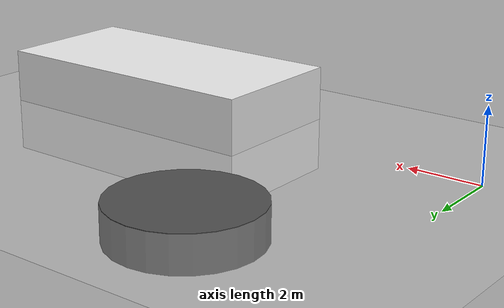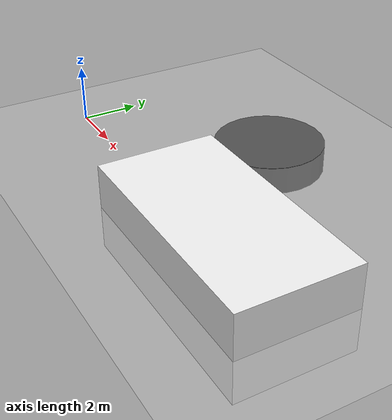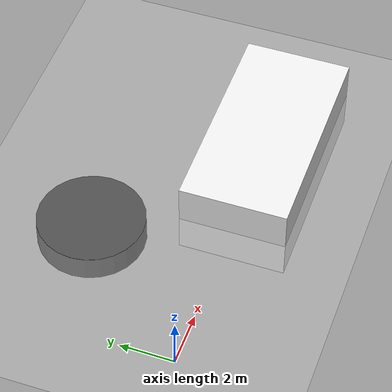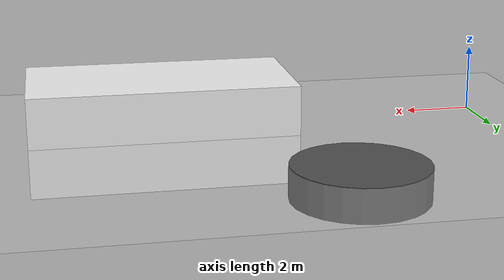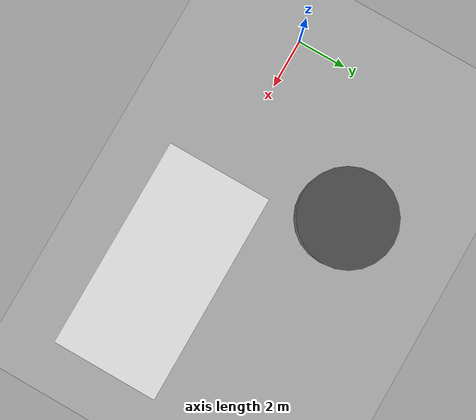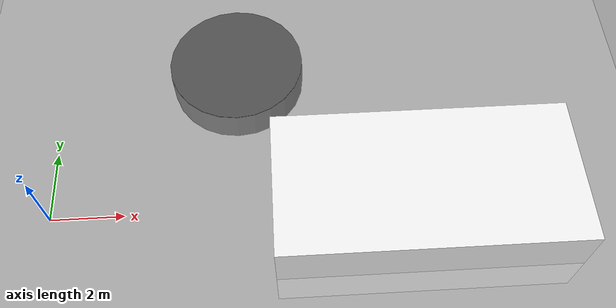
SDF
<?xml version="1.0" ?>
<sdf version="1.6">
  <world name="lunar_habitat">
 <plugin name="gazebo_ros_state" filename="libgazebo_ros_state.so">
  <ros>
    <namespace>/gazebo</namespace>
  </ros>
  <update_rate>1.0</update_rate>
</plugin>

<plugin name="gazebo_ros_factory" filename="libgazebo_ros_factory.so" />

    <!-- Lunar Physics -->
    <physics name="default_physics" default="0" type="ode">
      <gravity>0 0 -1.62</gravity> <!-- Lunar gravity -->
      <ode>
        <solver>
          <type>quick</type>
          <iters>10</iters>
          <sor>1.3</sor>
        </solver>
        <constraints>
          <cfm>0</cfm>
          <erp>0.2</erp>
          <contact_max_correcting_vel>100</contact_max_correcting_vel>
          <contact_surface_layer>0.001</contact_surface_layer>
        </constraints>
      </ode>
      <real_time_update_rate>1000</real_time_update_rate>
      <max_step_size>0.001</max_step_size>
    </physics>

    <!-- Sun lighting -->
    <light name="sun" type="directional">
      <cast_shadows>1</cast_shadows>
      <pose>0 0 10 0 0 0</pose>
      <diffuse>0.8 0.8 0.8 1</diffuse>
      <specular>0.8 0.8 0.8 1</specular>
      <attenuation>
        <range>1000</range>
        <constant>0.9</constant>
        <linear>0.01</linear>
        <quadratic>0.001</quadratic>
      </attenuation>
      <direction>-0.5 0.1 -0.9</direction>
    </light>

    <!-- Lunar surface -->
    <model name="ground_plane">
      <static>true</static>
      <link name="link">
        <collision name="collision">
          <geometry>
            <plane>
              <normal>0 0 1</normal>
              <size>100 100</size>
            </plane>
          </geometry>
          <surface>
            <contact>
              <collide_bitmask>65535</collide_bitmask>
            </contact>
            <friction>
              <ode>
                <mu>0.1</mu>  <!-- Low friction for lunar regolith -->
                <mu2>0.1</mu2>
              </ode>
            </friction>
          </surface>
        </collision>
        <visual name="visual">
          <cast_shadows>false</cast_shadows>
          <geometry>
            <plane>
              <normal>0 0 1</normal>
              <size>100 100</size>
            </plane>
          </geometry>
          <material>
            <script>
              <uri>file://media/materials/scripts/gazebo.material</uri>
              <name>Gazebo/Grey</name>
            </script>
          </material>
        </visual>
      </link>
    </model>

    <!-- Habitat Structure -->
    <model name="lunar_habitat">
      <static>true</static>
      <pose>10 0 0 0 0 0</pose>
      <link name="habitat_link">
        <visual name="visual">
          <geometry>
            <box>
              <size>8 4 3</size>
            </box>
          </geometry>
          <material>
            <script>
              <uri>file://media/materials/scripts/gazebo.material</uri>
              <name>Gazebo/White</name>
            </script>
          </material>
        </visual>
        <collision name="collision">
          <geometry>
            <box>
              <size>8 4 3</size>
            </box>
          </geometry>
        </collision>
      </link>
    </model>

    <!-- Crater obstacle -->
    <model name="crater1">
      <static>true</static>
      <pose>5 5 -0.5 0 0 0</pose>
      <link name="link">
        <collision name="collision">
          <geometry>
            <cylinder>
              <radius>2</radius>
              <length>1</length>
            </cylinder>
          </geometry>
        </collision>
        <visual name="visual">
          <geometry>
            <cylinder>
              <radius>2</radius>
              <length>1</length>
            </cylinder>
          </geometry>
          <material>
            <script>
              <uri>file://media/materials/scripts/gazebo.material</uri>
              <name>Gazebo/DarkGrey</name>
            </script>
          </material>
        </visual>
      </link>
    </model>

  </world>
</sdf>
